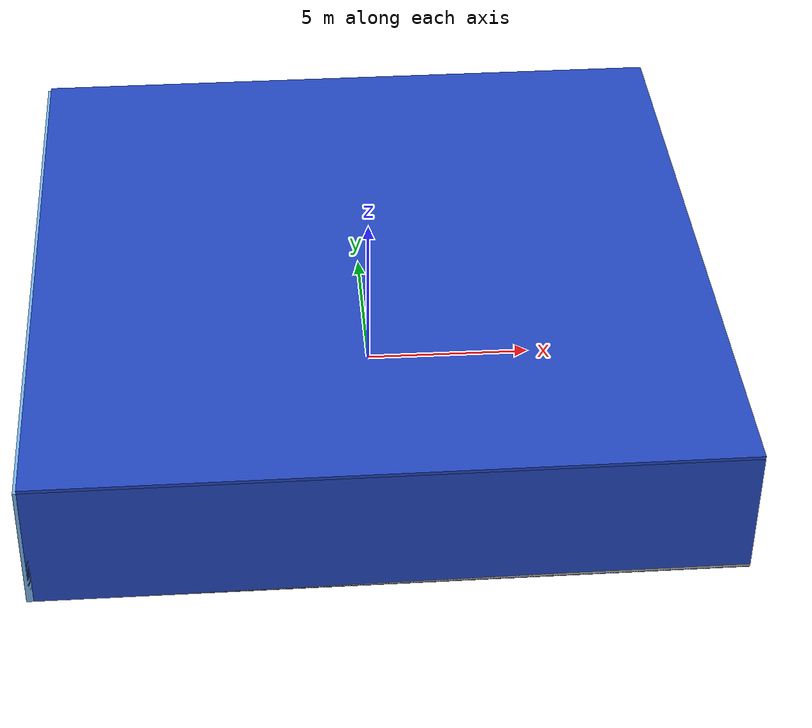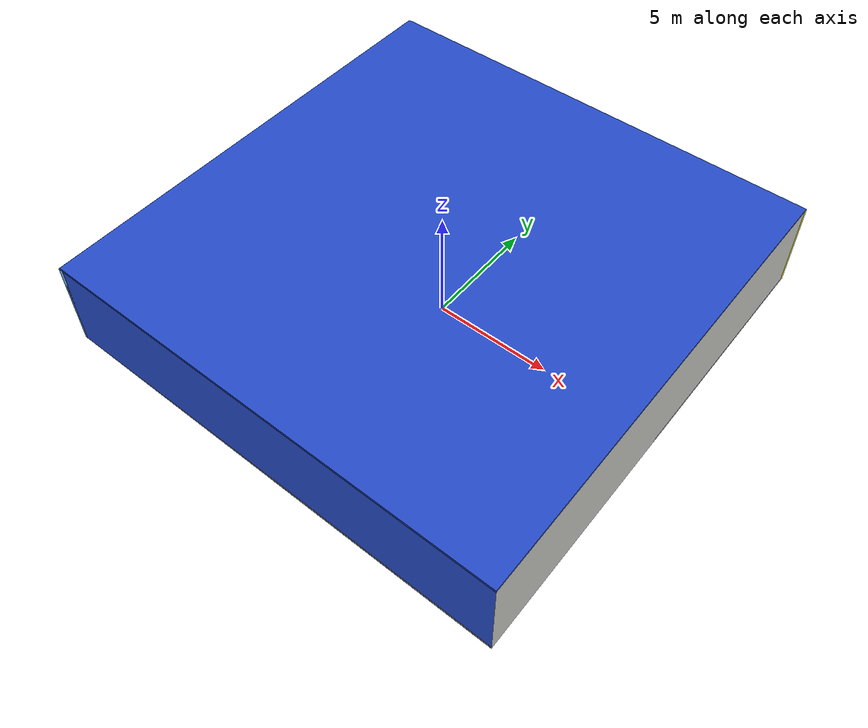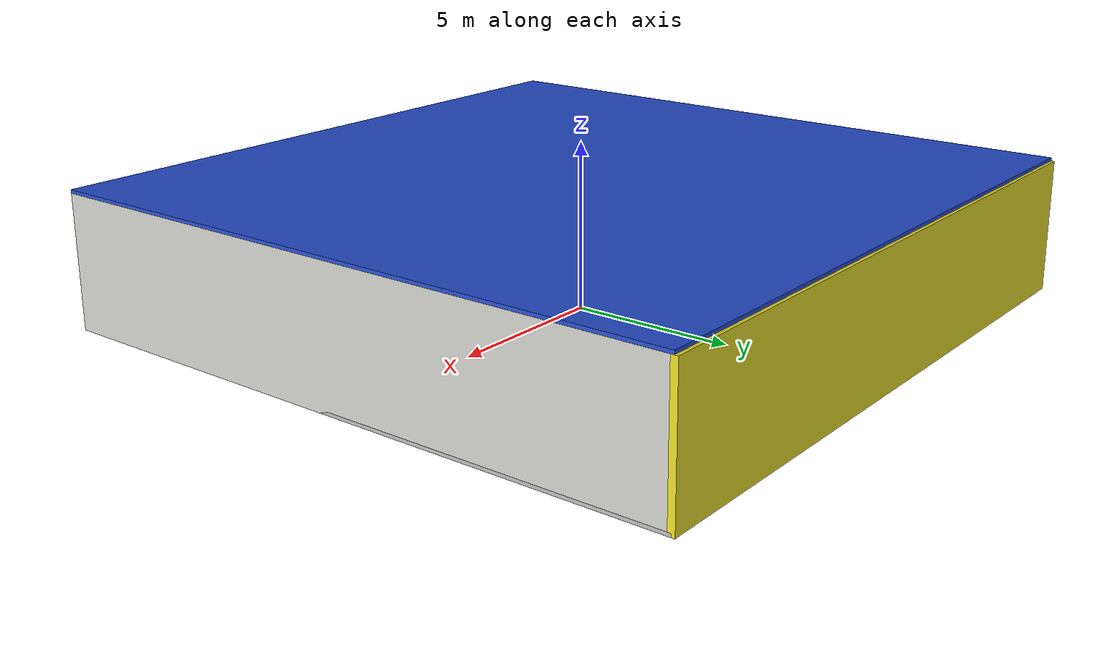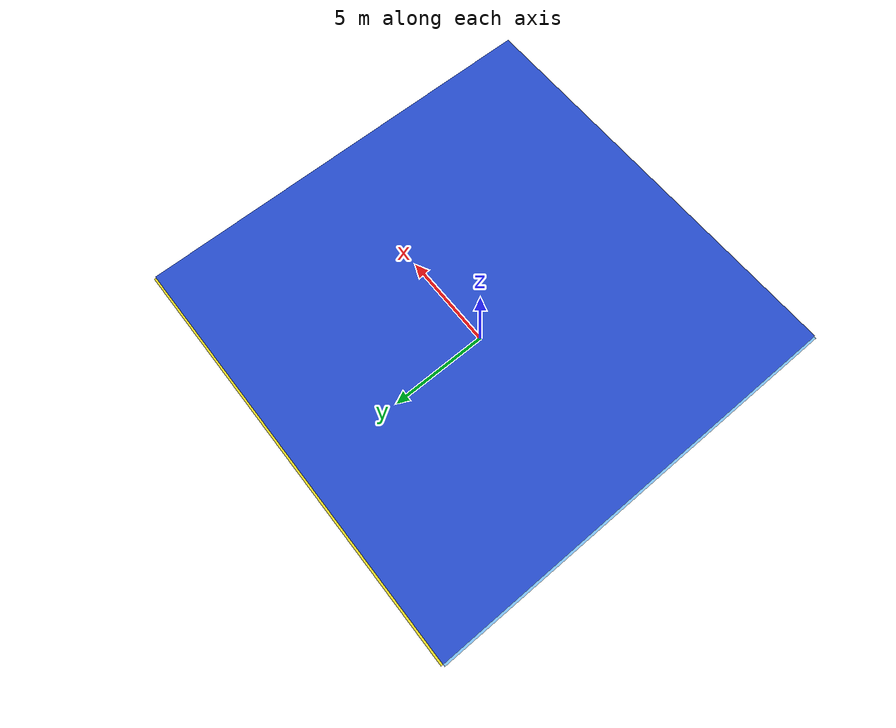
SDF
<sdf version="1.4">
 <world name="default">
  <physics type="ode">
   <max_step_size>0.001</max_step_size>
   <real_time_factor>1</real_time_factor>
   <real_time_update_rate>1000</real_time_update_rate>
   <gravity>0 0 -9.8</gravity>
  </physics>
  <scene><ambient>0.4 0.4 0.4 1</ambient><background>0.7 0.7 0.7 1</background><shadows>1</shadows></scene>
  <model name="Surrounding">
   <static>1</static>
   <link name="Ceiling">
    <collision name="Ceiling_Collision"><geometry><box><size>20 20 0.1</size></box></geometry></collision>
    <visual name="Ceiling_Visual">
     <geometry><box><size>20 20 0.1</size></box></geometry>
     <material>
      <script><uri>file://media/materials/scripts/gazebo.material</uri><name>Gazebo/BlueGlow</name></script>
     </material>
    </visual>
    <pose>0 0 4.05 0 0 0</pose>
   </link>
   <link name="Wall_South">
    <collision name="Wall_South_Collision">
     <geometry><box><size>20 0 4</size></box></geometry>
     <pose>0 0 2 0 -0 0</pose>
    </collision>
    <visual name="Wall_South_Visual">
     <pose>0 0 2 0 -0 0</pose>
     <geometry><box><size>20 0 4</size></box></geometry>
     <material>
      <script><uri>file://media/materials/scripts/gazebo.material</uri><name>Gazebo/BlueLaser</name></script>
     </material>
    </visual>
    <velocity_decay><linear>0</linear><angular>0</angular></velocity_decay>
    <pose>0 -10 0 0 -0 0</pose>
   </link>
   <link name="Wall_East">
    <collision name="Wall_21_Collision">
     <geometry><box><size>20 0 4</size></box></geometry>
     <pose>0 0 2 0 -0 0</pose>
    </collision>
    <visual name="Wall_21_Visual">
     <pose>0 0 2 0 -0 0</pose>
     <geometry><box><size>20 0 4</size></box></geometry>
     <material>
      <script><uri>file://media/materials/scripts/gazebo.material</uri><name>Gazebo/CeilingTiled</name></script>
     </material>
    </visual>
    <velocity_decay><linear>0</linear><angular>0</angular></velocity_decay>
    <pose>10 0 0 0 -0 1.5708</pose>
   </link>
   <link name="Wall_North">
    <collision name="Wall_22_Collision">
     <geometry><box><size>20 0.2 4</size></box></geometry>
     <pose>0 0 2 0 -0 0</pose>
    </collision>
    <visual name="Wall_22_Visual">
     <pose>0 0 2 0 -0 0</pose>
     <geometry><box><size>20 0.2 4</size></box></geometry>
     <material>
      <script><uri>file://media/materials/scripts/gazebo.material</uri><name>Gazebo/Yellow</name></script>
     </material>
    </visual>
    <velocity_decay><linear>0</linear><angular>0</angular></velocity_decay>
    <pose>0 10 0 0 -0 0</pose>
   </link>
   <link name="Wall_West">
    <collision name="Wall_23_Collision">
     <geometry><box><size>20 0.2 4</size></box></geometry>
     <pose>0 0 2 0 -0 0</pose>
    </collision>
    <visual name="Wall_23_Visual">
     <pose>0 0 2 0 -0 0</pose>
     <geometry><box><size>20 0.2 4</size></box></geometry>
     <material>
      <script><uri>file://media/materials/scripts/gazebo.material</uri><name>Gazebo/SkyBlue</name></script>
     </material>
    </visual>
    <velocity_decay><linear>0</linear><angular>0</angular></velocity_decay>
    <pose>-10 0 0 0 0 -1.5708</pose>
   </link>
   <link name="Ground_link">
    <collision name="collision">
     <pose>0 0 .05 0 -0 0</pose>
     <geometry><box><size>20 20 0.1</size></box></geometry>
    </collision>
    <visual name="visual">
     <pose>0 0 .05 0 -0 0</pose>
     <geometry><box><size>20 20 0.1</size></box></geometry>
     <material>
      <script><uri>file://media/materials/scripts/gazebo.material</uri><name>Gazebo/Pioneer2Body</name></script>
     </material>
    </visual>
   </link>
   <static>1</static>
  </model>
  <spherical_coordinates>
   <surface_model>EARTH_WGS84</surface_model>
   <latitude_deg>0</latitude_deg>
   <longitude_deg>0</longitude_deg>
   <elevation>0</elevation>
   <heading_deg>0</heading_deg>
  </spherical_coordinates>
  <light name="lightball_0" type="diffuse">
   <diffuse>0.8 0.8 0.8 1</diffuse>
   <specular>0.2 0.2 0.2 1</specular>
   <attenuation>
    <range>100</range>
    <constant>0.7</constant>
    <linear>0.01</linear>
    <quadratic>0.001</quadratic>
   </attenuation>
   <direction>-0.5 0.1 -0.9</direction>
   <pose>5.41078494175 5.87214237493 2.06803306116 0 0 0</pose>
  </light>
  <light name="lightball_1" type="diffuse">
   <diffuse>0.8 0.8 0.8 1</diffuse>
   <specular>0.2 0.2 0.2 1</specular>
   <attenuation>
    <range>100</range>
    <constant>0.7</constant>
    <linear>0.01</linear>
    <quadratic>0.001</quadratic>
   </attenuation>
   <direction>-0.5 0.1 -0.9</direction>
   <pose>-7.17499039235 -8.46590813391 3.55728987487 0 0 0</pose>
  </light>
  <light name="lightball_2" type="diffuse">
   <diffuse>0.8 0.8 0.8 1</diffuse>
   <specular>0.2 0.2 0.2 1</specular>
   <attenuation>
    <range>100</range>
    <constant>0.7</constant>
    <linear>0.01</linear>
    <quadratic>0.001</quadratic>
   </attenuation>
   <direction>-0.5 0.1 -0.9</direction>
   <pose>-2.79273695507 -3.75494688949 1.27662569381 0 0 0</pose>
  </light>
  <light name="lightball_3" type="diffuse">
   <diffuse>0.8 0.8 0.8 1</diffuse>
   <specular>0.2 0.2 0.2 1</specular>
   <attenuation>
    <range>100</range>
    <constant>0.7</constant>
    <linear>0.01</linear>
    <quadratic>0.001</quadratic>
   </attenuation>
   <direction>-0.5 0.1 -0.9</direction>
   <pose>-4.96823642822 0.594866200288 2.97782820096 0 0 0</pose>
  </light>
  <light name="lightball_4" type="diffuse">
   <diffuse>0.8 0.8 0.8 1</diffuse>
   <specular>0.2 0.2 0.2 1</specular>
   <attenuation>
    <range>100</range>
    <constant>0.7</constant>
    <linear>0.01</linear>
    <quadratic>0.001</quadratic>
   </attenuation>
   <direction>-0.5 0.1 -0.9</direction>
   <pose>-8.22093049243 -1.64616706664 1.41421660993 0 0 0</pose>
  </light>
  <include><uri>model://cabinet</uri><pose>-8.52761196683 -0.554660178347 0 0 0 0.480122631407</pose></include>
  <include>
   <uri>model://robocup_3Dsim_goal</uri>
   <pose>-3.47368898597 -7.57770651492 0 0 0 1.77848020892</pose>
  </include>
  <include><uri>model://table</uri><pose>-4.02663396123 5.0660732122 0 0 0 0.529317039982</pose></include>
  <include>
   <uri>model://robocup_3Dsim_goal</uri>
   <pose>1.8290472292 -7.26490056664 0 0 0 0.14864345472</pose>
  </include>
  <include>
   <uri>model://robocup_3Dsim_goal</uri>
   <pose>3.98149036724 -0.895210986504 0 0 0 2.69034172981</pose>
  </include>
  <include><uri>model://table</uri><pose>4.98796135483 0.694828439893 0 0 0 2.3899409022</pose></include>
  <include>
   <uri>model://textured_shapes</uri>
   <pose>7.84350537061 4.78774018125 0 0 0 2.84841011755</pose>
  </include>
  <include><uri>model://table</uri><pose>8.3687377612 6.41229615185 0 0 0 1.86888452448</pose></include>
 </world>
</sdf>

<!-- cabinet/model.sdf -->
<sdf version="1.5">
  <model name="cabinet">
    <static>true</static>
    <link name="cabinet_bottom_plate">
      <inertial>
        <pose>0 0 -1 0 0 0</pose>
        <inertia>
          <ixx>2.050000</ixx>
          <ixy>0</ixy>
          <ixz>0</ixz>
          <iyy>2.050000</iyy>
          <iyz>0</iyz>
          <izz>2.050000</izz>
        </inertia>
        <mass>25.000000</mass>
      </inertial>
      <collision name="cabinet_bottom_plate_geom">
        <pose>0 0 0.010000 0 0 0</pose>
        <geometry>
          <box>
            <size>0.450000 0.450000 0.020000</size>
          </box>
        </geometry>
      </collision>
      <visual name="cabinet_bottom_plate_geom_visual">
        <pose>0 0 0.010000 0 0 0</pose>
        <geometry>
          <box>
            <size>0.450000 0.450000 0.020000</size>
          </box>
        </geometry>
        <material>
          <script>
            <uri>model://media/materials/scripts/gazebo.material</uri>
            <name>Gazebo/Wood</name>
          </script>
        </material>
      </visual>
      <collision name="cabinet_bottom_plate_geom_cabinet_back_plate">
        <pose>0.235000 0 0.510000 0 0 0</pose>
        <geometry>
          <box>
            <size>0.020000 0.450000 1.020000</size>
          </box>
        </geometry>
      </collision>
      <visual name="cabinet_bottom_plate_geom_cabinet_back_plate_visual">
        <pose>0.235000 0 0.510000 0 0 0</pose>
        <geometry>
          <box>
            <size>0.020000 0.450000 1.020000</size>
          </box>
        </geometry>
        <material>
          <script>
            <uri>model://media/materials/scripts/gazebo.material</uri>
            <name>Gazebo/Wood</name>
          </script>
        </material>
      </visual>
      <collision name="cabinet_bottom_plate_geom_cabinet_left_plate">
        <pose>0 0.235000 0.510000 0 0 0</pose>
        <geometry>
          <box>
            <size>0.450000 0.020000 1.020000</size>
          </box>
        </geometry>
      </collision>
      <visual name="cabinet_bottom_plate_geom_cabinet_left_plate_visual">
        <pose>0 0.235000 0.510000 0 0 0</pose>
        <geometry>
          <box>
            <size>0.450000 0.020000 1.020000</size>
          </box>
        </geometry>
        <material>
          <script>
            <uri>model://media/materials/scripts/gazebo.material</uri>
            <name>Gazebo/Wood</name>
          </script>
        </material>
      </visual>
      <collision name="cabinet_bottom_plate_geom_cabinet_middle_plate">
        <pose>0 0 0.510000 0 0 0</pose>
        <geometry>
          <box>
            <size>0.450000 0.450000 0.020000</size>
          </box>
        </geometry>
      </collision>
      <visual name="cabinet_bottom_plate_geom_cabinet_middle_plate_visual">
        <pose>0 0 0.510000 0 0 0</pose>
        <geometry>
          <box>
            <size>0.450000 0.450000 0.020000</size>
          </box>
        </geometry>
        <material>
          <script>
            <uri>model://media/materials/scripts/gazebo.material</uri>
            <name>Gazebo/Wood</name>
          </script>
        </material>
      </visual>
      <collision name="cabinet_bottom_plate_geom_cabinet_right_plate">
        <pose>0 -0.235000 0.510000 0 0 0</pose>
        <geometry>
          <box>
            <size>0.450000 0.020000 1.020000</size>
          </box>
        </geometry>
      </collision>
      <visual name="cabinet_bottom_plate_geom_cabinet_right_plate_visual">
        <pose>0 -0.235000 0.510000 0 0 0</pose>
        <geometry>
          <box>
            <size>0.450000 0.020000 1.020000</size>
          </box>
        </geometry>
        <material>
          <script>
            <uri>model://media/materials/scripts/gazebo.material</uri>
            <name>Gazebo/Wood</name>
          </script>
        </material>
      </visual>
      <collision name="cabinet_bottom_plate_geom_cabinet_top_plate">
        <pose>0 0 1.010000 0 0 0</pose>
        <geometry>
          <box>
            <size>0.450000 0.450000 0.020000</size>
          </box>
        </geometry>
      </collision>
      <visual name="cabinet_bottom_plate_geom_cabinet_top_plate_visual">
        <pose>0 0 1.010000 0 0 0</pose>
        <geometry>
          <box>
            <size>0.450000 0.450000 0.020000</size>
          </box>
        </geometry>
        <material>
          <script>
            <uri>model://media/materials/scripts/gazebo.material</uri>
            <name>Gazebo/Wood</name>
          </script>
        </material>
      </visual>
    </link>
  </model>
</sdf>

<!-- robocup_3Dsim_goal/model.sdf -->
<sdf version="1.5">
  <model name="robocup_3d_goal">
    <static>true</static>
    <link name="left_post">
      <pose>0 1.05 0.45 0 0 0</pose>
      <collision name="collision">
        <geometry>
          <cylinder>
            <radius>0.05</radius>
            <length>0.9</length>
          </cylinder>
        </geometry>
      </collision>
      <visual name="visual">
        <geometry>
          <cylinder>
            <radius>0.05</radius>
            <length>0.9</length>
          </cylinder>
        </geometry>
        <material>
          <script>
            <uri>file://media/materials/scripts/gazebo.material</uri>
            <name>Gazebo/ZincYellow</name>
          </script>
        </material>
      </visual>
    </link>
    <link name="left_support_horiz_lower">
      <pose>0.30 1.05 0.01 0 0 0</pose>
      <collision name="collision">
        <geometry>
          <box>
            <size>0.50 0.02 0.02</size>
          </box>
        </geometry>
      </collision>
      <visual name="visual">
        <geometry>
          <box>
            <size>0.50 0.02 0.02</size>
          </box>
        </geometry>
        <material>
          <script>
            <uri>file://media/materials/scripts/gazebo.material</uri>
            <name>Gazebo/White</name>
          </script>
        </material>
      </visual>
    </link>
    <link name="left_support_horiz_upper">
      <pose>0.30 1.05 0.79 0 0 0</pose>
      <collision name="collision">
        <geometry>
          <box>
            <size>0.50 0.02 0.02</size>
          </box>
        </geometry>
      </collision>
      <visual name="visual">
        <geometry>
          <box>
            <size>0.50 0.02 0.02</size>
          </box>
        </geometry>
        <material>
          <script>
            <uri>file://media/materials/scripts/gazebo.material</uri>
            <name>Gazebo/White</name>
          </script>
        </material>
      </visual>
    </link>
    <link name="left_support_vertical">
      <pose>0.56 1.05 0.4 0 1.5708 0</pose>
      <collision name="collision">
        <geometry>
          <box>
            <size>0.80 0.02 0.02</size>
          </box>
        </geometry>
      </collision>
      <visual name="visual">
        <geometry>
          <box>
            <size>0.80 0.02 0.02</size>
          </box>
        </geometry>
        <material>
          <script>
            <uri>file://media/materials/scripts/gazebo.material</uri>
            <name>Gazebo/White</name>
          </script>
        </material>
      </visual>
    </link>
    <link name="right_support_horiz_lower">
      <pose>0.30 -1.05 0.01 0 0 0</pose>
      <collision name="collision">
        <geometry>
          <box>
            <size>0.50 0.02 0.02</size>
          </box>
        </geometry>
      </collision>
      <visual name="visual">
        <geometry>
          <box>
            <size>0.50 0.02 0.02</size>
          </box>
        </geometry>
        <material>
          <script>
            <uri>file://media/materials/scripts/gazebo.material</uri>
            <name>Gazebo/White</name>
          </script>
        </material>
      </visual>
    </link>
    <link name="right_support_horiz_upper">
      <pose>0.30 -1.05 0.79 0 0 0</pose>
      <collision name="collision">
        <geometry>
          <box>
            <size>0.50 0.02 0.02</size>
          </box>
        </geometry>
      </collision>
      <visual name="visual">
        <geometry>
          <box>
            <size>0.50 0.02 0.02</size>
          </box>
        </geometry>
        <material>
          <script>
            <uri>file://media/materials/scripts/gazebo.material</uri>
            <name>Gazebo/White</name>
          </script>
        </material>
      </visual>
    </link>
    <link name="right_support_vertical">
      <pose>0.56 -1.05 0.4 0 1.5708 0</pose>
      <collision name="collision">
        <geometry>
          <box>
            <size>0.80 0.02 0.02</size>
          </box>
        </geometry>
      </collision>
      <visual name="visual">
        <geometry>
          <box>
            <size>0.80 0.02 0.02</size>
          </box>
        </geometry>
        <material>
          <script>
            <uri>file://media/materials/scripts/gazebo.material</uri>
            <name>Gazebo/White</name>
          </script>
        </material>
      </visual>
    </link>
    <link name="center_support_horiz_lower">
      <pose>0.56 0 0.01 0 1.5708 0</pose>
      <collision name="collision">
        <geometry>
          <box>
            <size>0.02 2.08 0.02</size>
          </box>
        </geometry>
      </collision>
      <visual name="visual">
        <geometry>
          <box>
            <size>0.02 2.08 0.02</size>
          </box>
        </geometry>
        <material>
          <script>
            <uri>file://media/materials/scripts/gazebo.material</uri>
            <name>Gazebo/White</name>
          </script>
        </material>
      </visual>
    </link>
    <link name="center_support_horiz_upper">
      <pose>0.56 0 0.79 0 1.5708 0</pose>
      <collision name="collision">
        <geometry>
          <box>
            <size>0.02 2.08 0.02</size>
          </box>
        </geometry>
      </collision>
      <visual name="visual">
        <geometry>
          <box>
            <size>0.02 2.08 0.02</size>
          </box>
        </geometry>
        <material>
          <script>
            <uri>file://media/materials/scripts/gazebo.material</uri>
            <name>Gazebo/White</name>
          </script>
        </material>
      </visual>
    </link>
    <link name="right_post">
      <pose>0 -1.05 0.45 0 0 0</pose>
      <collision name="collision">
        <geometry>
          <cylinder>
            <radius>0.05</radius>
            <length>0.9</length>
          </cylinder>
        </geometry>
      </collision>
      <visual name="visual">
        <geometry>
          <cylinder>
            <radius>0.05</radius>
            <length>0.9</length>
          </cylinder>
        </geometry>
        <material>
          <script>
            <uri>file://media/materials/scripts/gazebo.material</uri>
            <name>Gazebo/ZincYellow</name>
          </script>
        </material>
      </visual>
    </link>
    <link name="crossbar">
      <pose>0 0 0.85 1.57 1.57 0</pose>
      <collision name="collision">
        <geometry>
          <cylinder>
            <radius>0.05</radius>
            <length>2.0</length>
          </cylinder>
        </geometry>
      </collision>
      <visual name="visual">
        <geometry>
          <cylinder>
            <radius>0.05</radius>
            <length>2.0</length>
          </cylinder>
        </geometry>
        <material>
          <script>
            <uri>file://media/materials/scripts/gazebo.material</uri>
            <name>Gazebo/ZincYellow</name>
          </script>
        </material>
      </visual>
    </link>
    <link name="center_net">
      <pose>0.56 0 0.40 0 0 0</pose>
      <collision name="collision">
        <geometry>
          <box>
            <size>0.01 2.1 0.80</size>
          </box>
        </geometry>
      </collision>
      <visual name="visual">
        <geometry>
          <box>
            <size>0.01 2.1 0.80</size>
          </box>
        </geometry>
        <material>
          <script>
            <uri>model://../model_source/models/robocup09_spl_field/materials/scripts/</uri>
            <uri>model://../model_source/models/robocup09_spl_field/materials/textures/</uri>
            <name>RoboCup/Net</name>
          </script>
        </material>
      </visual>
    </link>
    <link name="left_net">
      <pose>0.30 1.05 0.40 0 0 0</pose>
      <collision name="collision">
        <geometry>
          <box>
            <size>0.50 0.01 0.76</size>
          </box>
        </geometry>
      </collision>
      <visual name="visual">
        <geometry>
          <box>
            <size>0.50 0.01 0.76</size>
          </box>
        </geometry>
        <material>
          <script>
            <uri>model://../model_source/models/robocup09_spl_field/materials/scripts/</uri>
            <uri>model://../model_source/models/robocup09_spl_field/materials/textures/</uri>
            <name>RoboCup/Net</name>
          </script>
        </material>
      </visual>
    </link>
    <link name="right_net">
      <pose>0.30 -1.05 0.40 0 0 0</pose>
      <collision name="collision">
        <geometry>
          <box>
            <size>0.50 0.01 0.76</size>
          </box>
        </geometry>
      </collision>
      <visual name="visual">
        <geometry>
          <box>
            <size>0.50 0.01 0.76</size>
          </box>
        </geometry>
        <material>
          <script>
            <uri>model://../model_source/models/robocup09_spl_field/materials/scripts/</uri>
            <uri>model://../model_source/models/robocup09_spl_field/materials/textures/</uri>
            <name>RoboCup/Net</name>
          </script>
        </material>
      </visual>
    </link>
  </model>
</sdf>

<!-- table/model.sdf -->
<sdf version="1.5">
  <model name="table">
    <static>true</static>
    <link name="link">
      <collision name="surface">
        <pose>0 0 1.0 0 0 0</pose>
        <geometry>
          <box>
            <size>1.5 0.8 0.03</size>
          </box>
        </geometry>
        <surface>
          <friction>
            <ode>
              <mu>0.6</mu>
              <mu2>0.6</mu2>
            </ode>
          </friction>
        </surface>
      </collision>
      <visual name="visual1">
        <pose>0 0 1.0 0 0 0</pose>
        <geometry>
          <box>
            <size>1.5 0.8 0.03</size>
          </box>
        </geometry>
        <material>
          <script>
            <uri>model://media/materials/scripts/gazebo.material</uri>
            <name>Gazebo/Wood</name>
          </script>
        </material>
      </visual>
      <collision name="front_left_leg">
        <pose>0.68 0.38 0.5 0 0 0</pose>
        <geometry>
          <cylinder>
            <radius>0.02</radius>
            <length>1.0</length>
          </cylinder>
        </geometry>
      </collision>
      <visual name="front_left_leg">
        <pose>0.68 0.38 0.5 0 0 0</pose>
        <geometry>
          <cylinder>
            <radius>0.02</radius>
            <length>1.0</length>
          </cylinder>
        </geometry>
        <material>
          <script>
            <uri>model://media/materials/scripts/gazebo.material</uri>
            <name>Gazebo/Grey</name>
          </script>
        </material>
      </visual>
      <collision name="front_right_leg">
        <pose>0.68 -0.38 0.5 0 0 0</pose>
        <geometry>
          <cylinder>
            <radius>0.02</radius>
            <length>1.0</length>
          </cylinder>
        </geometry>
      </collision>
      <visual name="front_right_leg">
        <pose>0.68 -0.38 0.5 0 0 0</pose>
        <geometry>
          <cylinder>
            <radius>0.02</radius>
            <length>1.0</length>
          </cylinder>
        </geometry>
        <material>
          <script>
            <uri>model://media/materials/scripts/gazebo.material</uri>
            <name>Gazebo/Grey</name>
          </script>
        </material>
      </visual>
      <collision name="back_right_leg">
        <pose>-0.68 -0.38 0.5 0 0 0</pose>
        <geometry>
          <cylinder>
            <radius>0.02</radius>
            <length>1.0</length>
          </cylinder>
        </geometry>
      </collision>
      <visual name="back_right_leg">
        <pose>-0.68 -0.38 0.5 0 0 0</pose>
        <geometry>
          <cylinder>
            <radius>0.02</radius>
            <length>1.0</length>
          </cylinder>
        </geometry>
        <material>
          <script>
            <uri>model://media/materials/scripts/gazebo.material</uri>
            <name>Gazebo/Grey</name>
          </script>
        </material>
      </visual>
      <collision name="back_left_leg">
        <pose>-0.68 0.38 0.5 0 0 0</pose>
        <geometry>
          <cylinder>
            <radius>0.02</radius>
            <length>1.0</length>
          </cylinder>
        </geometry>
      </collision>
      <visual name="back_left_leg">
        <pose>-0.68 0.38 0.5 0 0 0</pose>
        <geometry>
          <cylinder>
            <radius>0.02</radius>
            <length>1.0</length>
          </cylinder>
        </geometry>
        <material>
          <script>
            <uri>model://media/materials/scripts/gazebo.material</uri>
            <name>Gazebo/Grey</name>
          </script>
        </material>
      </visual>
    </link>
  </model>
</sdf>

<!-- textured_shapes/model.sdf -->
<sdf version="1.6">
  <model name="textured_shapes">
    <pose>0 0 0.5 0 0 0</pose>
    <link name="box">
      <pose>0 -1.5 0 0 0 0</pose>
      <collision name="collision">
        <geometry>
          <box>
            <size>1 1 1</size>
          </box>
        </geometry>
      </collision>
      <visual name="visual">
        <geometry>
          <box>
            <size>1 1 1</size>
          </box>
        </geometry>
        <material>
          <script>
            <uri>model://../model_source/models/textured_shapes/materials/scripts</uri>
            <uri>model://../model_source/models/textured_shapes/materials/textures</uri>
            <name>TexturedShape/Squares</name>
          </script>
        </material>
      </visual>
    </link>
    <link name="sphere">
      <collision name="collision">
        <geometry>
          <sphere>
            <radius>0.5</radius>
          </sphere>
        </geometry>
      </collision>
      <visual name="visual">
        <geometry>
          <sphere>
            <radius>0.5</radius>
          </sphere>
        </geometry>
        <material>
          <script>
            <uri>model://../model_source/models/textured_shapes/materials/scripts</uri>
            <uri>model://../model_source/models/textured_shapes/materials/textures</uri>
            <name>TexturedShape/Squares</name>
          </script>
        </material>
      </visual>
    </link>
    <link name="cylinder">
      <pose>0 1.5 0 0 0 0</pose>
      <collision name="collision">
        <geometry>
          <cylinder>
            <radius>0.5</radius>
            <length>1</length>
          </cylinder>
        </geometry>
      </collision>
      <visual name="visual">
        <geometry>
          <cylinder>
            <radius>0.5</radius>
            <length>1</length>
          </cylinder>
        </geometry>
        <material>
          <script>
            <uri>model://../model_source/models/textured_shapes/materials/scripts</uri>
            <uri>model://../model_source/models/textured_shapes/materials/textures</uri>
            <name>TexturedShape/Squares</name>
          </script>
        </material>
      </visual>
    </link>
  </model>
</sdf>
